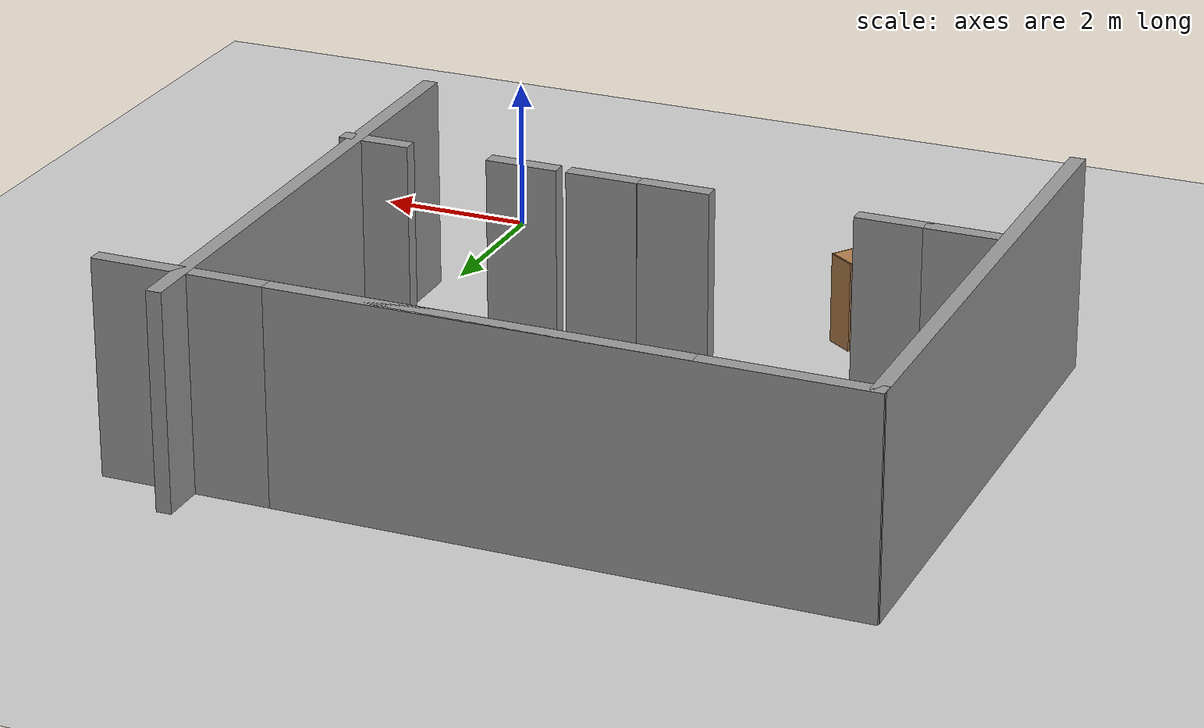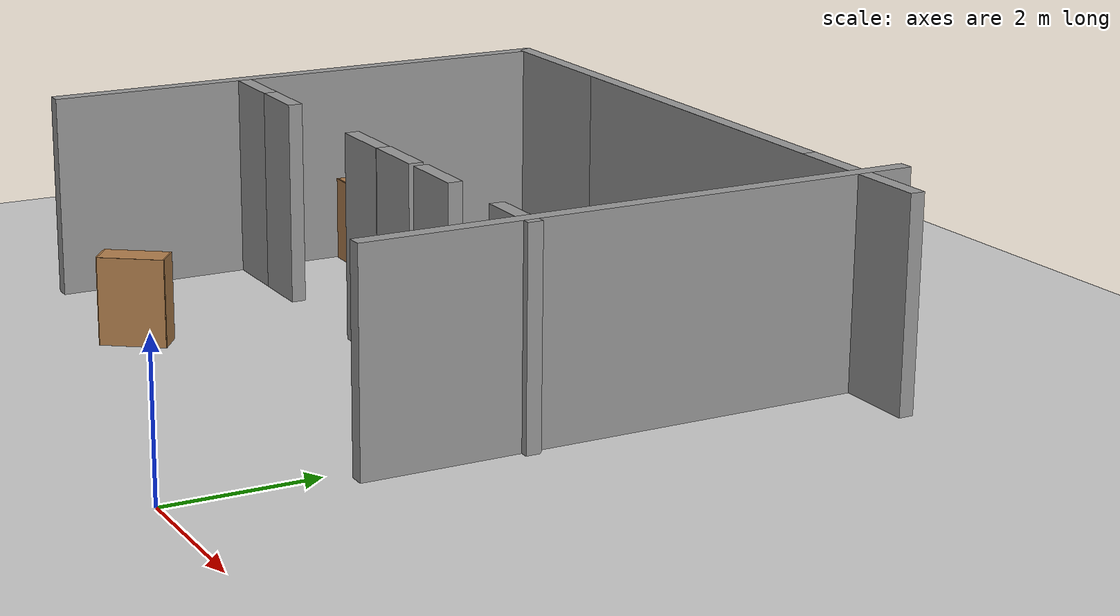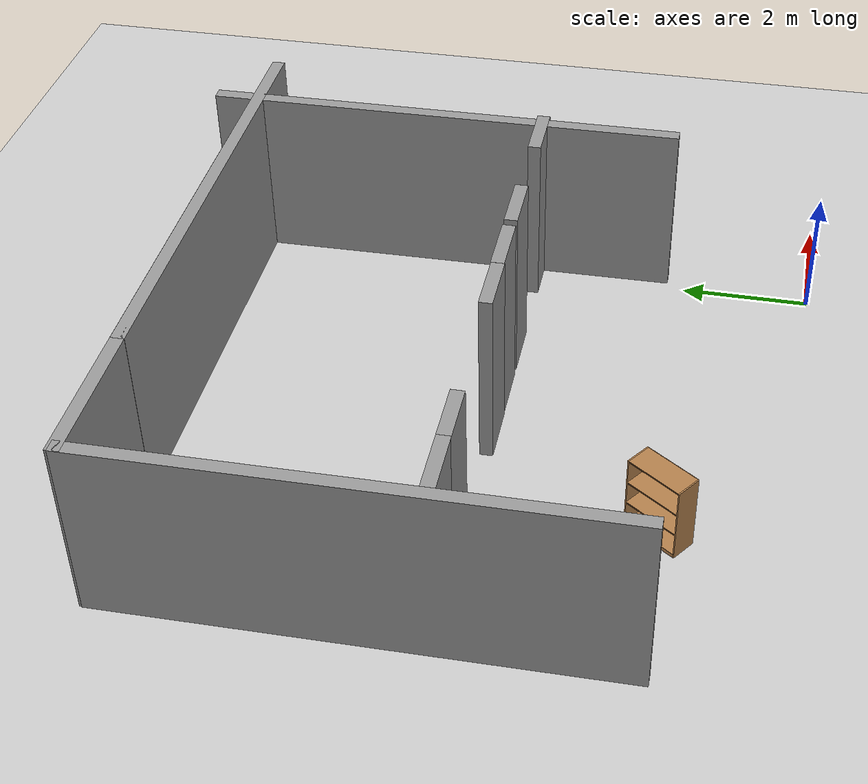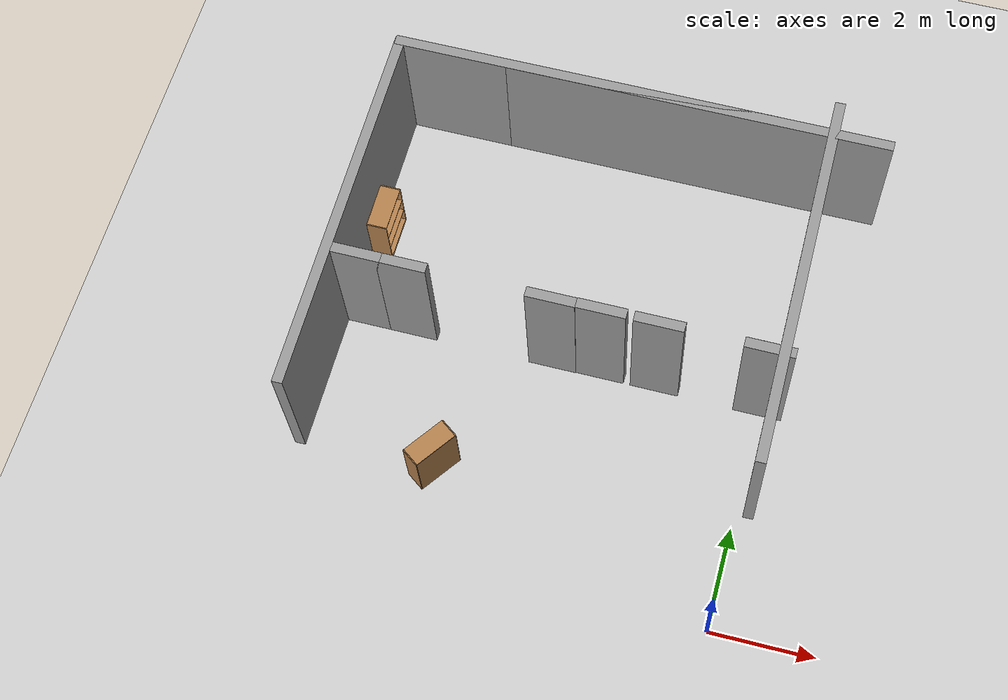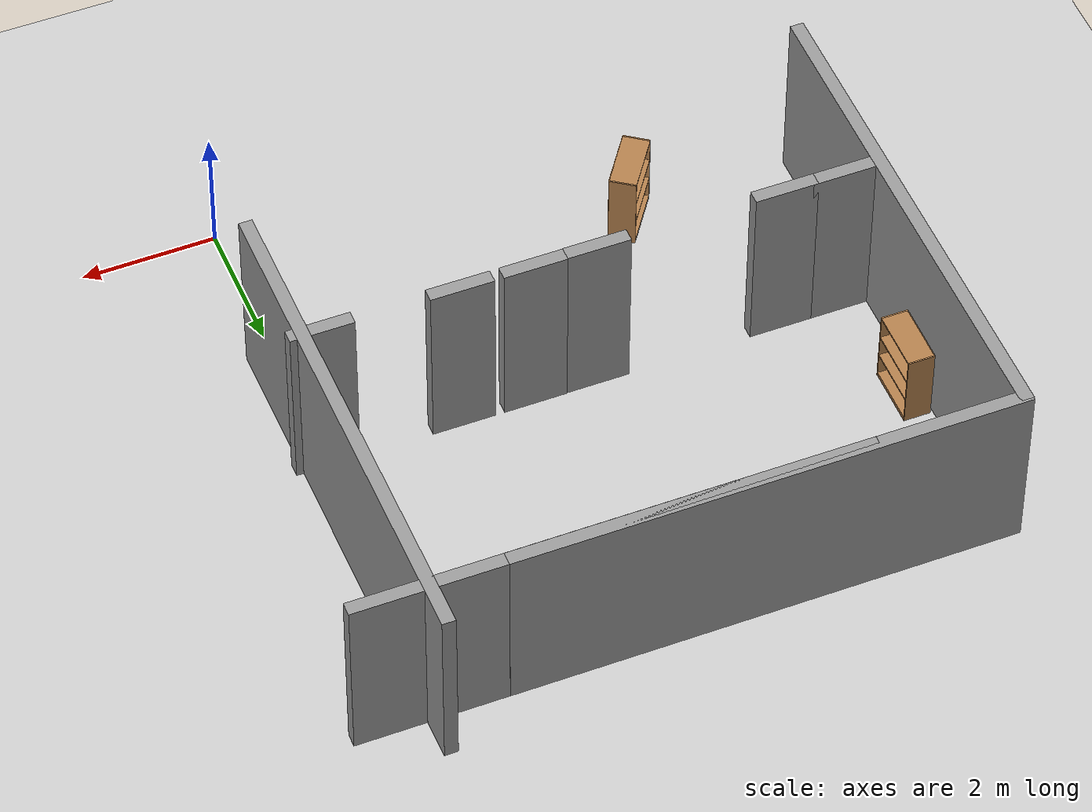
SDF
<sdf version="1.4">
 <world name="default">
  <model name="ground_plane">
   <static>1</static>
   <link name="link">
    <collision name="collision">
     <geometry><plane><normal>0 0 1</normal><size>100 100</size></plane></geometry>
     <surface><friction><ode><mu>100</mu><mu2>50</mu2></ode></friction></surface>
    </collision>
    <visual name="visual">
     <cast_shadows>0</cast_shadows>
     <geometry><plane><normal>0 0 1</normal><size>100 100</size></plane></geometry>
     <material>
      <script><uri>file://media/materials/scripts/gazebo.material</uri><name>Gazebo/Grey</name></script>
     </material>
    </visual>
    <velocity_decay><linear>0</linear><angular>0</angular></velocity_decay>
   </link>
  </model>
  <model name="grey_wall_5">
   <static>1</static>
   <link name="link">
    <pose>0 0 1.4 0 -0 0</pose>
    <collision name="collision"><geometry><box><size>7.5 0.2 2.8</size></box></geometry></collision>
    <visual name="visual">
     <cast_shadows>0</cast_shadows>
     <geometry><box><size>7.5 0.2 2.8</size></box></geometry>
     <material>
      <script>
       <uri>model://grey_wall/materials/scripts</uri>
       <uri>model://grey_wall/materials/textures</uri>
       <name>vrc/grey_wall</name>
      </script>
     </material>
    </visual>
    <velocity_decay><linear>0</linear><angular>0</angular></velocity_decay>
   </link>
   <pose>-2.39332 9.09609 0 0 -0 0</pose>
  </model>
  <model name="bookshelf">
   <static>1</static>
   <link name="link">
    <inertial><mass>1</mass></inertial>
    <collision name="back">
     <pose>0 0.005 0.6 0 -0 0</pose>
     <geometry><box><size>0.9 0.01 1.2</size></box></geometry>
    </collision>
    <visual name="visual1">
     <pose>0 0.005 0.6 0 -0 0</pose>
     <geometry><box><size>0.9 0.01 1.2</size></box></geometry>
     <material>
      <script><uri>file://media/materials/scripts/gazebo.material</uri><name>Gazebo/Wood</name></script>
     </material>
    </visual>
    <collision name="left_side">
     <pose>0.45 -0.195 0.6 0 -0 0</pose>
     <geometry><box><size>0.02 0.4 1.2</size></box></geometry>
    </collision>
    <visual name="visual2">
     <pose>0.45 -0.195 0.6 0 -0 0</pose>
     <geometry><box><size>0.02 0.4 1.2</size></box></geometry>
     <material>
      <script><uri>file://media/materials/scripts/gazebo.material</uri><name>Gazebo/Wood</name></script>
     </material>
    </visual>
    <collision name="right_side">
     <pose>-0.45 -0.195 0.6 0 -0 0</pose>
     <geometry><box><size>0.02 0.4 1.2</size></box></geometry>
    </collision>
    <visual name="visual3">
     <pose>-0.45 -0.195 0.6 0 -0 0</pose>
     <geometry><box><size>0.02 0.4 1.2</size></box></geometry>
     <material>
      <script><uri>file://media/materials/scripts/gazebo.material</uri><name>Gazebo/Wood</name></script>
     </material>
    </visual>
    <collision name="bottom">
     <pose>0 -0.195 0.03 0 -0 0</pose>
     <geometry><box><size>0.88 0.4 0.06</size></box></geometry>
    </collision>
    <visual name="visual4">
     <pose>0 -0.195 0.03 0 -0 0</pose>
     <geometry><box><size>0.88 0.4 0.06</size></box></geometry>
     <material>
      <script><uri>file://media/materials/scripts/gazebo.material</uri><name>Gazebo/Wood</name></script>
     </material>
    </visual>
    <collision name="top">
     <pose>0 -0.195 1.19 0 -0 0</pose>
     <geometry><box><size>0.88 0.4 0.02</size></box></geometry>
    </collision>
    <visual name="visual5">
     <pose>0 -0.195 1.19 0 -0 0</pose>
     <geometry><box><size>0.88 0.4 0.02</size></box></geometry>
     <material>
      <script><uri>file://media/materials/scripts/gazebo.material</uri><name>Gazebo/Wood</name></script>
     </material>
    </visual>
    <collision name="low_shelf">
     <pose>0 -0.195 0.43 0 -0 0</pose>
     <geometry><box><size>0.88 0.4 0.02</size></box></geometry>
    </collision>
    <visual name="visual6">
     <pose>0 -0.195 0.43 0 -0 0</pose>
     <geometry><box><size>0.88 0.4 0.02</size></box></geometry>
     <material>
      <script><uri>file://media/materials/scripts/gazebo.material</uri><name>Gazebo/Wood</name></script>
     </material>
    </visual>
    <collision name="high_shelf">
     <pose>0 -0.195 0.8 0 -0 0</pose>
     <geometry><box><size>0.88 0.4 0.02</size></box></geometry>
    </collision>
    <visual name="visual7">
     <pose>0 -0.195 0.8 0 -0 0</pose>
     <geometry><box><size>0.88 0.4 0.02</size></box></geometry>
     <material>
      <script><uri>file://media/materials/scripts/gazebo.material</uri><name>Gazebo/Wood</name></script>
     </material>
    </visual>
    <velocity_decay><linear>0</linear><angular>0</angular></velocity_decay>
   </link>
   <pose>-5.48736 1.71714 0 0 0 -2.18701</pose>
  </model>
  <model name="grey_wall">
   <static>1</static>
   <link name="link">
    <pose>0 0 1.4 0 -0 0</pose>
    <collision name="collision"><geometry><box><size>7.5 0.2 2.8</size></box></geometry></collision>
    <visual name="visual">
     <cast_shadows>0</cast_shadows>
     <geometry><box><size>7.5 0.2 2.8</size></box></geometry>
     <material>
      <script>
       <uri>model://grey_wall/materials/scripts</uri>
       <uri>model://grey_wall/materials/textures</uri>
       <name>vrc/grey_wall</name>
      </script>
     </material>
    </visual>
    <velocity_decay><linear>0</linear><angular>0</angular></velocity_decay>
   </link>
   <pose>0.232017 6.0412 0 0 0 -1.56399</pose>
  </model>
  <model name="grey_wall_8">
   <static>1</static>
   <link name="link">
    <pose>0 0 1.4 0 -0 0</pose>
    <collision name="collision"><geometry><box><size>7.5 0.2 2.8</size></box></geometry></collision>
    <visual name="visual">
     <cast_shadows>0</cast_shadows>
     <geometry><box><size>7.5 0.2 2.8</size></box></geometry>
     <material>
      <script>
       <uri>model://grey_wall/materials/scripts</uri>
       <uri>model://grey_wall/materials/textures</uri>
       <name>vrc/grey_wall</name>
      </script>
     </material>
    </visual>
    <velocity_decay><linear>0</linear><angular>0</angular></velocity_decay>
   </link>
   <pose>-8.25909 5.41188 0 0 -0 1.5757</pose>
  </model>
  <model name="grey_wall_9">
   <static>1</static>
   <link name="link">
    <pose>0 0 1.4 0 -0 0</pose>
    <collision name="collision"><geometry><box><size>7.5 0.2 2.8</size></box></geometry></collision>
    <visual name="visual">
     <cast_shadows>0</cast_shadows>
     <geometry><box><size>7.5 0.2 2.8</size></box></geometry>
     <material>
      <script>
       <uri>model://grey_wall/materials/scripts</uri>
       <uri>model://grey_wall/materials/textures</uri>
       <name>vrc/grey_wall</name>
      </script>
     </material>
    </visual>
    <velocity_decay><linear>0</linear><angular>0</angular></velocity_decay>
   </link>
   <pose>-4.6171 9.09785 0 0 -0 0</pose>
  </model>
  <model name="grey_wall_small">
   <static>1</static>
   <link name="link">
    <pose>0 0 1.4 0 -0 0</pose>
    <collision name="collision"><geometry><box><size>0.9375 0.2 2.8</size></box></geometry></collision>
    <visual name="visual">
     <cast_shadows>0</cast_shadows>
     <geometry><box><size>0.9375 0.2 2.8</size></box></geometry>
     <material>
      <script>
       <uri>model://grey_wall_small/materials/scripts</uri>
       <uri>model://grey_wall_small/materials/textures</uri>
       <name>vrc/grey_wall_small</name>
      </script>
     </material>
    </visual>
    <velocity_decay><linear>0</linear><angular>0</angular></velocity_decay>
   </link>
   <pose>-4.04009 4.46573 0 0 -0 0</pose>
  </model>
  <model name="grey_wall_small_0">
   <static>1</static>
   <link name="link">
    <pose>0 0 1.4 0 -0 0</pose>
    <collision name="collision"><geometry><box><size>0.9375 0.2 2.8</size></box></geometry></collision>
    <visual name="visual">
     <cast_shadows>0</cast_shadows>
     <geometry><box><size>0.9375 0.2 2.8</size></box></geometry>
     <material>
      <script>
       <uri>model://grey_wall_small/materials/scripts</uri>
       <uri>model://grey_wall_small/materials/textures</uri>
       <name>vrc/grey_wall_small</name>
      </script>
     </material>
    </visual>
    <velocity_decay><linear>0</linear><angular>0</angular></velocity_decay>
   </link>
   <pose>-3.10228 4.47348 0 0 -0 0</pose>
  </model>
  <model name="grey_wall_small_1">
   <static>1</static>
   <link name="link">
    <pose>0 0 1.4 0 -0 0</pose>
    <collision name="collision"><geometry><box><size>0.9375 0.2 2.8</size></box></geometry></collision>
    <visual name="visual">
     <cast_shadows>0</cast_shadows>
     <geometry><box><size>0.9375 0.2 2.8</size></box></geometry>
     <material>
      <script>
       <uri>model://grey_wall_small/materials/scripts</uri>
       <uri>model://grey_wall_small/materials/textures</uri>
       <name>vrc/grey_wall_small</name>
      </script>
     </material>
    </visual>
    <velocity_decay><linear>0</linear><angular>0</angular></velocity_decay>
   </link>
   <pose>-2.03511 4.47305 0 0 -0 0</pose>
  </model>
  <model name="grey_wall_small_2">
   <static>1</static>
   <link name="link">
    <pose>0 0 1.4 0 -0 0</pose>
    <collision name="collision"><geometry><box><size>0.9375 0.2 2.8</size></box></geometry></collision>
    <visual name="visual">
     <cast_shadows>0</cast_shadows>
     <geometry><box><size>0.9375 0.2 2.8</size></box></geometry>
     <material>
      <script>
       <uri>model://grey_wall_small/materials/scripts</uri>
       <uri>model://grey_wall_small/materials/textures</uri>
       <name>vrc/grey_wall_small</name>
      </script>
     </material>
    </visual>
    <velocity_decay><linear>0</linear><angular>0</angular></velocity_decay>
   </link>
   <pose>-0.020055 4.46259 0 0 -0 0</pose>
  </model>
  <model name="grey_wall_small_3">
   <static>1</static>
   <link name="link">
    <pose>0 0 1.4 0 -0 0</pose>
    <collision name="collision"><geometry><box><size>0.9375 0.2 2.8</size></box></geometry></collision>
    <visual name="visual">
     <cast_shadows>0</cast_shadows>
     <geometry><box><size>0.9375 0.2 2.8</size></box></geometry>
     <material>
      <script>
       <uri>model://grey_wall_small/materials/scripts</uri>
       <uri>model://grey_wall_small/materials/textures</uri>
       <name>vrc/grey_wall_small</name>
      </script>
     </material>
    </visual>
    <velocity_decay><linear>0</linear><angular>0</angular></velocity_decay>
   </link>
   <pose>-7.6898 4.46929 0 0 -0 0</pose>
  </model>
  <model name="grey_wall_small_4">
   <static>1</static>
   <link name="link">
    <pose>0 0 1.4 0 -0 0</pose>
    <collision name="collision"><geometry><box><size>0.9375 0.2 2.8</size></box></geometry></collision>
    <visual name="visual">
     <cast_shadows>0</cast_shadows>
     <geometry><box><size>0.9375 0.2 2.8</size></box></geometry>
     <material>
      <script>
       <uri>model://grey_wall_small/materials/scripts</uri>
       <uri>model://grey_wall_small/materials/textures</uri>
       <name>vrc/grey_wall_small</name>
      </script>
     </material>
    </visual>
    <velocity_decay><linear>0</linear><angular>0</angular></velocity_decay>
   </link>
   <pose>-6.82457 4.46929 0 0 -0 0</pose>
  </model>
  <model name="bookshelf_1">
   <static>1</static>
   <link name="link">
    <inertial><mass>1</mass></inertial>
    <collision name="back">
     <pose>0 0.005 0.6 0 -0 0</pose>
     <geometry><box><size>0.9 0.01 1.2</size></box></geometry>
    </collision>
    <visual name="visual1">
     <pose>0 0.005 0.6 0 -0 0</pose>
     <geometry><box><size>0.9 0.01 1.2</size></box></geometry>
     <material>
      <script><uri>file://media/materials/scripts/gazebo.material</uri><name>Gazebo/Wood</name></script>
     </material>
    </visual>
    <collision name="left_side">
     <pose>0.45 -0.195 0.6 0 -0 0</pose>
     <geometry><box><size>0.02 0.4 1.2</size></box></geometry>
    </collision>
    <visual name="visual2">
     <pose>0.45 -0.195 0.6 0 -0 0</pose>
     <geometry><box><size>0.02 0.4 1.2</size></box></geometry>
     <material>
      <script><uri>file://media/materials/scripts/gazebo.material</uri><name>Gazebo/Wood</name></script>
     </material>
    </visual>
    <collision name="right_side">
     <pose>-0.45 -0.195 0.6 0 -0 0</pose>
     <geometry><box><size>0.02 0.4 1.2</size></box></geometry>
    </collision>
    <visual name="visual3">
     <pose>-0.45 -0.195 0.6 0 -0 0</pose>
     <geometry><box><size>0.02 0.4 1.2</size></box></geometry>
     <material>
      <script><uri>file://media/materials/scripts/gazebo.material</uri><name>Gazebo/Wood</name></script>
     </material>
    </visual>
    <collision name="bottom">
     <pose>0 -0.195 0.03 0 -0 0</pose>
     <geometry><box><size>0.88 0.4 0.06</size></box></geometry>
    </collision>
    <visual name="visual4">
     <pose>0 -0.195 0.03 0 -0 0</pose>
     <geometry><box><size>0.88 0.4 0.06</size></box></geometry>
     <material>
      <script><uri>file://media/materials/scripts/gazebo.material</uri><name>Gazebo/Wood</name></script>
     </material>
    </visual>
    <collision name="top">
     <pose>0 -0.195 1.19 0 -0 0</pose>
     <geometry><box><size>0.88 0.4 0.02</size></box></geometry>
    </collision>
    <visual name="visual5">
     <pose>0 -0.195 1.19 0 -0 0</pose>
     <geometry><box><size>0.88 0.4 0.02</size></box></geometry>
     <material>
      <script><uri>file://media/materials/scripts/gazebo.material</uri><name>Gazebo/Wood</name></script>
     </material>
    </visual>
    <collision name="low_shelf">
     <pose>0 -0.195 0.43 0 -0 0</pose>
     <geometry><box><size>0.88 0.4 0.02</size></box></geometry>
    </collision>
    <visual name="visual6">
     <pose>0 -0.195 0.43 0 -0 0</pose>
     <geometry><box><size>0.88 0.4 0.02</size></box></geometry>
     <material>
      <script><uri>file://media/materials/scripts/gazebo.material</uri><name>Gazebo/Wood</name></script>
     </material>
    </visual>
    <collision name="high_shelf">
     <pose>0 -0.195 0.8 0 -0 0</pose>
     <geometry><box><size>0.88 0.4 0.02</size></box></geometry>
    </collision>
    <visual name="visual7">
     <pose>0 -0.195 0.8 0 -0 0</pose>
     <geometry><box><size>0.88 0.4 0.02</size></box></geometry>
     <material>
      <script><uri>file://media/materials/scripts/gazebo.material</uri><name>Gazebo/Wood</name></script>
     </material>
    </visual>
    <velocity_decay><linear>0</linear><angular>0</angular></velocity_decay>
   </link>
   <pose>-8.11999 6.33208 0 0 -0 1.56891</pose>
  </model>
 </world>
</sdf>
